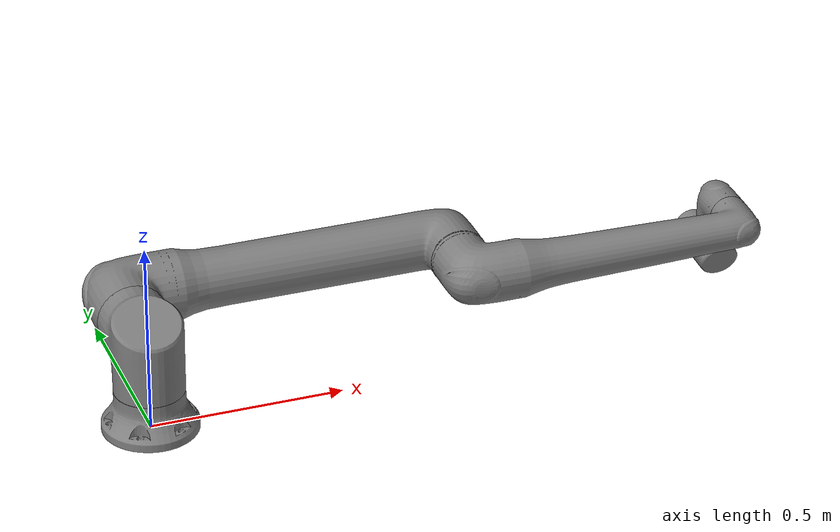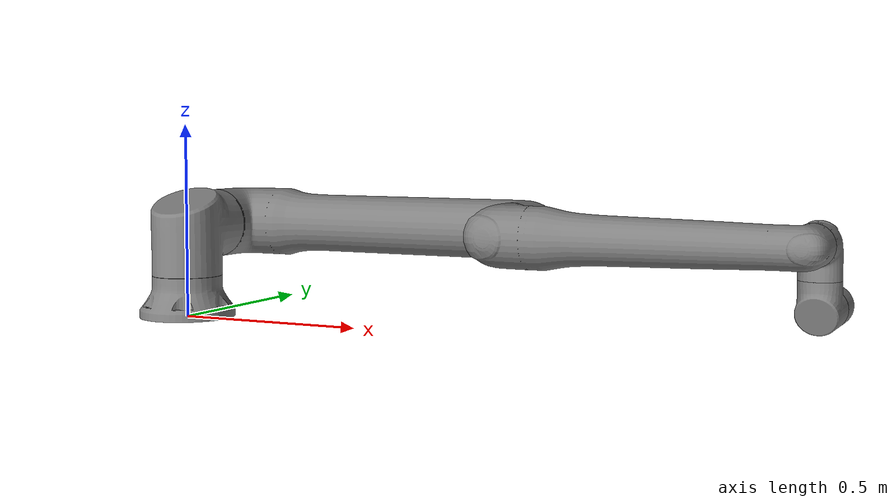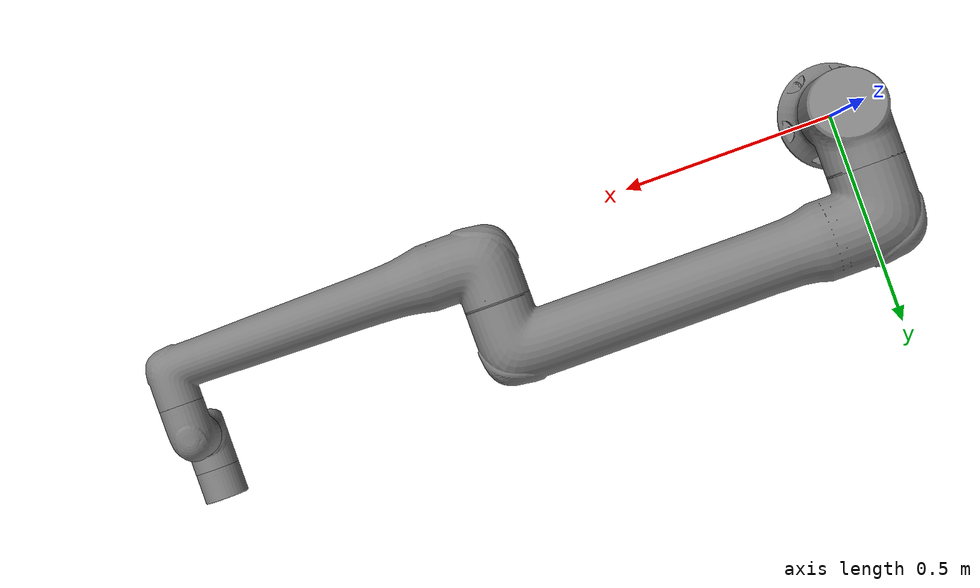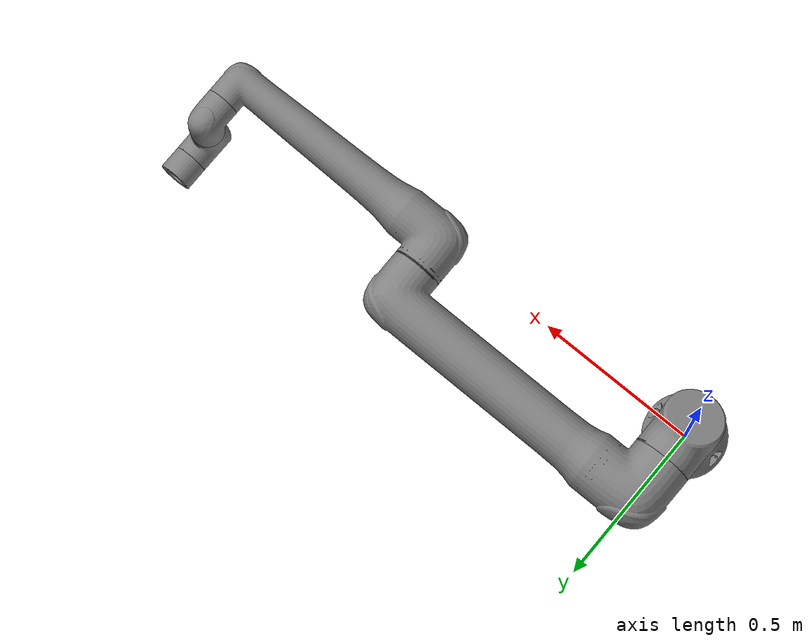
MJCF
<mujoco model="ur20">
  <compiler angle="radian"/>

  <asset>
    <mesh name="base" content_type="model/stl" file="meshes/collision/base.stl"/>
    <mesh name="shoulder" content_type="model/stl" file="meshes/collision/shoulder.stl"/>
    <mesh name="upperarm" content_type="model/stl" file="meshes/collision/upperarm.stl"/>
    <mesh name="forearm" content_type="model/stl" file="meshes/collision/forearm.stl"/>
    <mesh name="wrist1" content_type="model/stl" file="meshes/collision/wrist1.stl"/>
    <mesh name="wrist2" content_type="model/stl" file="meshes/collision/wrist2.stl"/>
    <mesh name="wrist3" content_type="model/stl" file="meshes/collision/wrist3.stl"/>
  </asset>

  <worldbody>
    <geom pos="0 0 0" quat="-1 0 0 0" type="mesh" mesh="base"/>
    <body name="shoulder_link" pos="0 0 0.2363" quat="0 0 0 1">
      <inertial pos="0 -0.0062 -0.061" quat="0.843524 0.480626 0.117639 -0.208871" mass="16.343" diaginertia="0.0887394 0.0883735 0.0720472"/>
      <joint name="shoulder_pan_joint" pos="0 0 0" axis="0 0 1" range="-6.28319 6.28319" actuatorfrcrange="-738 738"/>
      <geom quat="0 0 0 1" type="mesh" mesh="shoulder"/>
      <body name="upper_arm_link" quat="0.707107 0.707107 0 0">
        <inertial pos="-0.3394 0 0.2098" quat="0.502566 0.497435 0.496798 0.503168" mass="29.632" diaginertia="4.6659 4.63539 0.146106"/>
        <joint name="shoulder_lift_joint" pos="0 0 0" axis="0 0 1" range="-6.28319 6.28319" actuatorfrcrange="-738 738"/>
        <geom pos="0 0 0.26" quat="0.5 0.5 -0.5 -0.5" type="mesh" mesh="upperarm"/>
        <body name="forearm_link" pos="-0.862 0 0">
          <inertial pos="-0.4053 0 0.0604" quat="0.510462 0.48933 0.490588 0.509223" mass="7.879" diaginertia="0.75763 0.754423 0.0249668"/>
          <joint name="elbow_joint" pos="0 0 0" axis="0 0 1" range="-3.14159 3.14159" actuatorfrcrange="-433 433"/>
          <geom pos="0 0 0.043" quat="0.5 0.5 -0.5 -0.5" type="mesh" mesh="forearm"/>
          <body name="wrist_1_link" pos="-0.7287 0 0.201">
            <inertial pos="0 -0.0393 -0.0026" quat="0.989529 0.121355 0.0147064 -0.0767408" mass="3.054" diaginertia="0.00555247 0.00545771 0.00392982"/>
            <joint name="wrist_1_joint" pos="0 0 0" axis="0 0 1" range="-6.28319 6.28319" actuatorfrcrange="-107 107"/>
            <geom pos="0 0 -0.0775" quat="0.707107 0.707107 0 0" type="mesh" mesh="wrist1"/>
            <body name="wrist_2_link" pos="0 -0.1593 -3.2673e-11" quat="0.707107 0.707107 0 0">
              <inertial pos="0 0.0379 -0.0024" quat="0.489074 -0.0502817 0.102168 0.864777" mass="3.126" diaginertia="0.00586894 0.00585713 0.00418393"/>
              <joint name="wrist_2_joint" pos="0 0 0" axis="0 0 1" range="-6.28319 6.28319" actuatorfrcrange="-107 107"/>
              <geom pos="0 0 -0.0749" quat="1 0 0 0" type="mesh" mesh="wrist2"/>
              <body name="wrist_3_link" pos="0 0.1543 -3.16475e-11" quat="0.707107 -0.707107 0 0">
                <inertial pos="0 0 -0.0293" quat="0.5 0.5 -0.5 0.5" mass="0.926" diaginertia="0.00117 0.00092 0.00091"/>
                <joint name="wrist_3_joint" pos="0 0 0" axis="0 0 1" range="-6.28319 6.28319" actuatorfrcrange="-107 107"/>
                <geom pos="0 0 -0.07" quat="0.707107 0.707107 0 0" type="mesh" mesh="wrist3"/>
              </body>
            </body>
          </body>
        </body>
      </body>
    </body>
  </worldbody>
</mujoco>
